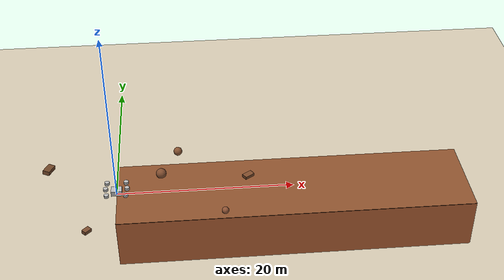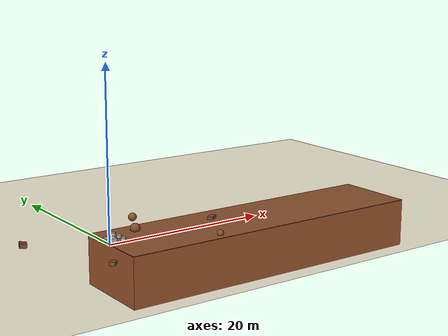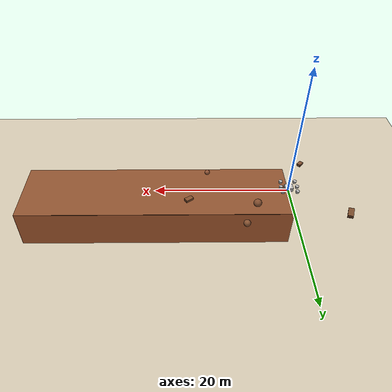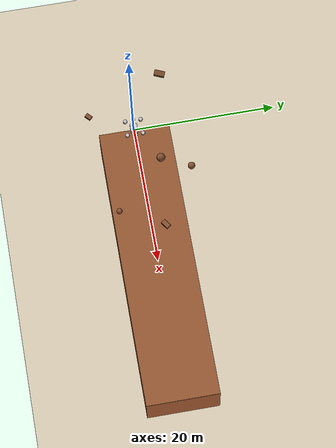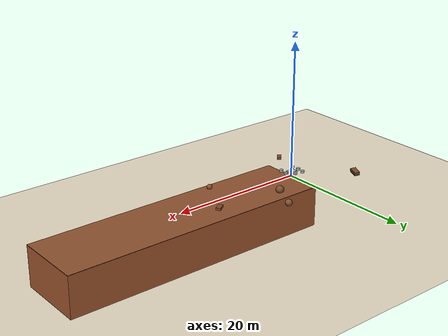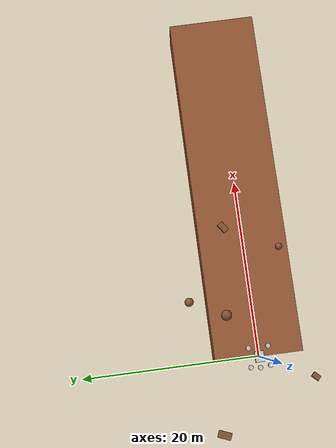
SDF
<?xml version="1.0" ?>
<sdf version="1.9">
  <world name="mars_surface">

    <!-- Mars gravity: 3.721 m/s^2 -->
    <gravity>0 0 -3.721</gravity>

    <!-- Mars atmosphere (thin CO2) -->
    <atmosphere type="adiabatic">
      <temperature>210</temperature>
      <pressure>636</pressure>
    </atmosphere>

    <!-- Physics engine -->
    <physics name="1ms" type="ode">
      <max_step_size>0.001</max_step_size>
      <real_time_factor>1.0</real_time_factor>
    </physics>

    <!-- Core simulation systems -->
    <plugin filename="gz-sim-physics-system"
            name="gz::sim::systems::Physics"/>
    <plugin filename="gz-sim-user-commands-system"
            name="gz::sim::systems::UserCommands"/>
    <plugin filename="gz-sim-scene-broadcaster-system"
            name="gz::sim::systems::SceneBroadcaster"/>
    <plugin filename="gz-sim-websocket-server-system"
            name="gz::sim::systems::WebsocketServer">
      <port>9002</port>
      <publication_hz>30</publication_hz>
      <max_connections>-1</max_connections>
    </plugin>
    <plugin filename="gz-sim-sensors-system"
            name="gz::sim::systems::Sensors">
      <render_engine>ogre2</render_engine>
    </plugin>
    <plugin filename="gz-sim-imu-system"
            name="gz::sim::systems::Imu"/>
    <plugin filename="gz-sim-contact-system"
            name="gz::sim::systems::Contact"/>

    <!-- Mars sky / scene -->
    <scene>
      <ambient>0.6 0.4 0.3 1.0</ambient>
      <background>0.76 0.55 0.38 1.0</background>
      <shadows>true</shadows>
    </scene>

    <!-- Sun (dimmer than Earth, Mars is farther) -->
    <light type="directional" name="mars_sun">
      <cast_shadows>true</cast_shadows>
      <pose>0 0 100 0 0 0</pose>
      <diffuse>0.9 0.7 0.5 1</diffuse>
      <specular>0.3 0.2 0.1 1</specular>
      <direction>-0.5 0.5 -1.0</direction>
    </light>

    <!-- Ground plane -->
    <model name="mars_ground">
      <static>true</static>
      <link name="ground_link">
        <collision name="ground_collision">
          <geometry>
            <plane>
              <normal>0 0 1</normal>
              <size>500 500</size>
            </plane>
          </geometry>
          <surface>
            <friction>
              <ode>
                <mu>0.8</mu>
                <mu2>0.8</mu2>
              </ode>
            </friction>
          </surface>
        </collision>
        <visual name="ground_visual">
          <geometry>
            <plane>
              <normal>0 0 1</normal>
              <size>500 500</size>
            </plane>
          </geometry>
          <material>
            <ambient>0.6 0.3 0.15 1</ambient>
            <diffuse>0.7 0.35 0.18 1</diffuse>
          </material>
        </visual>
      </link>
    </model>

    <!-- Rocks / obstacles -->
    <model name="rock_1">
      <static>true</static>
      <pose>5 3 0.3 0 0 0.5</pose>
      <link name="rock_link">
        <collision name="rock_col">
          <geometry><sphere><radius>0.6</radius></sphere></geometry>
        </collision>
        <visual name="rock_vis">
          <geometry><sphere><radius>0.6</radius></sphere></geometry>
          <material>
            <ambient>0.4 0.25 0.15 1</ambient>
            <diffuse>0.5 0.3 0.18 1</diffuse>
          </material>
        </visual>
      </link>
    </model>

    <model name="rock_2">
      <static>true</static>
      <pose>-8 5 0.15 0.1 0.1 1.2</pose>
      <link name="rock_link">
        <collision name="rock_col">
          <geometry><box><size>1.5 0.8 0.5</size></box></geometry>
        </collision>
        <visual name="rock_vis">
          <geometry><box><size>1.5 0.8 0.5</size></box></geometry>
          <material>
            <ambient>0.35 0.2 0.12 1</ambient>
            <diffuse>0.45 0.28 0.16 1</diffuse>
          </material>
        </visual>
      </link>
    </model>

    <model name="rock_3">
      <static>true</static>
      <pose>12 -4 0.25 0 0 0.3</pose>
      <link name="rock_link">
        <collision name="rock_col">
          <geometry><sphere><radius>0.4</radius></sphere></geometry>
        </collision>
        <visual name="rock_vis">
          <geometry><sphere><radius>0.4</radius></sphere></geometry>
          <material>
            <ambient>0.45 0.28 0.16 1</ambient>
            <diffuse>0.55 0.32 0.2 1</diffuse>
          </material>
        </visual>
      </link>
    </model>

    <model name="rock_4">
      <static>true</static>
      <pose>-3 -6 0.2 0.05 0.05 0.8</pose>
      <link name="rock_link">
        <collision name="rock_col">
          <geometry><box><size>0.9 0.6 0.4</size></box></geometry>
        </collision>
        <visual name="rock_vis">
          <geometry><box><size>0.9 0.6 0.4</size></box></geometry>
          <material>
            <ambient>0.38 0.22 0.14 1</ambient>
            <diffuse>0.48 0.3 0.18 1</diffuse>
          </material>
        </visual>
      </link>
    </model>

    <model name="rock_5">
      <static>true</static>
      <pose>7 7 0.35 0 0 1.0</pose>
      <link name="rock_link">
        <collision name="rock_col">
          <geometry><sphere><radius>0.5</radius></sphere></geometry>
        </collision>
        <visual name="rock_vis">
          <geometry><sphere><radius>0.5</radius></sphere></geometry>
          <material>
            <ambient>0.42 0.26 0.15 1</ambient>
            <diffuse>0.52 0.32 0.19 1</diffuse>
          </material>
        </visual>
      </link>
    </model>

    <model name="rock_6">
      <static>true</static>
      <pose>15 2 0.18 0 0 0.6</pose>
      <link name="rock_link">
        <collision name="rock_col">
          <geometry><box><size>1.2 0.7 0.35</size></box></geometry>
        </collision>
        <visual name="rock_vis">
          <geometry><box><size>1.2 0.7 0.35</size></box></geometry>
          <material>
            <ambient>0.4 0.24 0.14 1</ambient>
            <diffuse>0.5 0.3 0.17 1</diffuse>
          </material>
        </visual>
      </link>
    </model>

    <!-- Cliff / drop-off hazard at x=20 -->
    <model name="cliff_edge">
      <static>true</static>
      <pose>20 0 -3 0 0 0</pose>
      <link name="cliff_link">
        <collision name="cliff_col">
          <geometry><box><size>40 10 6</size></box></geometry>
        </collision>
        <visual name="cliff_vis">
          <geometry><box><size>40 10 6</size></box></geometry>
          <material>
            <ambient>0.5 0.28 0.15 1</ambient>
            <diffuse>0.55 0.32 0.18 1</diffuse>
          </material>
        </visual>
      </link>
    </model>

    <!-- Include the Perseverance rover -->
    <include>
      <uri>model://perseverance</uri>
      <name>perseverance</name>
      <pose>0 0 0.5 0 0 0</pose>
    </include>

  </world>
</sdf>

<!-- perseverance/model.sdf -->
<sdf version="1.9">
  <model name="perseverance">

    <!-- Base link: chassis, mass 1025 kg, IMU + all cameras/LIDAR/contact -->
    <link name="base_link">
      <pose>0 0 0 0 0 0</pose>
      <inertial>
        <pose>0 0 0.8 0 0 0</pose>
        <mass>1025</mass>
        <inertia>
          <ixx>10</ixx><ixy>0</ixy><ixz>0</ixz>
          <iyy>25</iyy><iyz>0</iyz>
          <izz>20</izz>
        </inertia>
      </inertial>
      <collision name="base_link_collision">
        <geometry>
          <box><size>1.2 1.0 0.6</size></box>
        </geometry>
        <surface>
          <friction>
            <ode><mu>0.5</mu><mu2>1.0</mu2></ode>
          </friction>
        </surface>
      </collision>
      <!-- Box visual so sim loads without mesh; add resources/perseverance.dae for real rover mesh -->
      <visual name="base_visual">
        <geometry>
          <box><size>1.2 1.0 0.6</size></box>
        </geometry>
      </visual>

      <!-- Existing IMU (50 Hz, Gaussian noise) -->
      <sensor name="imu_sensor" type="imu">
        <always_on>1</always_on>
        <update_rate>50</update_rate>
        <imu>
          <angular_velocity>
            <x><noise type="gaussian"><mean>0</mean><stddev>0.0002</stddev><bias_mean>7.5e-06</bias_mean><bias_stddev>8e-07</bias_stddev><dynamic_bias_stddev>4e-07</dynamic_bias_stddev><dynamic_bias_correlation_time>1000</dynamic_bias_correlation_time></noise></x>
            <y><noise type="gaussian"><mean>0</mean><stddev>0.0002</stddev><bias_mean>7.5e-06</bias_mean><bias_stddev>8e-07</bias_stddev><dynamic_bias_stddev>4e-07</dynamic_bias_stddev><dynamic_bias_correlation_time>1000</dynamic_bias_correlation_time></noise></y>
            <z><noise type="gaussian"><mean>0</mean><stddev>0.0002</stddev><bias_mean>7.5e-06</bias_mean><bias_stddev>8e-07</bias_stddev><dynamic_bias_stddev>4e-07</dynamic_bias_stddev><dynamic_bias_correlation_time>1000</dynamic_bias_correlation_time></noise></z>
          </angular_velocity>
          <linear_acceleration>
            <x><noise type="gaussian"><mean>0</mean><stddev>0.01</stddev><bias_mean>0.1</bias_mean><bias_stddev>0.001</bias_stddev><dynamic_bias_stddev>0.002</dynamic_bias_stddev><dynamic_bias_correlation_time>300</dynamic_bias_correlation_time></noise></x>
            <y><noise type="gaussian"><mean>0</mean><stddev>0.01</stddev><bias_mean>0.1</bias_mean><bias_stddev>0.001</bias_stddev><dynamic_bias_stddev>0.002</dynamic_bias_stddev><dynamic_bias_correlation_time>300</dynamic_bias_correlation_time></noise></y>
            <z><noise type="gaussian"><mean>0</mean><stddev>0.01</stddev><bias_mean>0.1</bias_mean><bias_stddev>0.001</bias_stddev><dynamic_bias_stddev>0.002</dynamic_bias_stddev><dynamic_bias_correlation_time>300</dynamic_bias_correlation_time></noise></z>
          </linear_acceleration>
        </imu>
        <topic>/rover/imu</topic>
      </sensor>

      <!-- === NAVCAM (Front Stereo Camera) === -->
      <sensor name="navcam_left" type="camera">
        <pose>0.5 0.15 1.5 0 0.2 0</pose>
        <always_on>1</always_on>
        <update_rate>15</update_rate>
        <camera name="navcam_left">
          <horizontal_fov>1.3962634</horizontal_fov>
          <image>
            <width>1280</width>
            <height>960</height>
            <format>R8G8B8</format>
          </image>
          <clip><near>0.1</near><far>500</far></clip>
          <noise>
            <type>gaussian</type>
            <mean>0.0</mean>
            <stddev>0.007</stddev>
          </noise>
        </camera>
        <topic>/rover/navcam_left</topic>
      </sensor>

      <!-- === HAZCAM FRONT (Obstacle Detection) === -->
      <sensor name="hazcam_front" type="depth_camera">
        <pose>0.8 0 0.4 0 0.5 0</pose>
        <always_on>1</always_on>
        <update_rate>10</update_rate>
        <camera name="hazcam_front">
          <horizontal_fov>2.0944</horizontal_fov>
          <image>
            <width>640</width>
            <height>480</height>
            <format>R_FLOAT32</format>
          </image>
          <clip><near>0.05</near><far>20</far></clip>
        </camera>
        <topic>/rover/hazcam_front</topic>
      </sensor>

      <!-- === HAZCAM REAR === -->
      <sensor name="hazcam_rear" type="depth_camera">
        <pose>-0.8 0 0.4 0 0.5 3.14159</pose>
        <always_on>1</always_on>
        <update_rate>10</update_rate>
        <camera name="hazcam_rear">
          <horizontal_fov>2.0944</horizontal_fov>
          <image>
            <width>640</width>
            <height>480</height>
            <format>R_FLOAT32</format>
          </image>
          <clip><near>0.05</near><far>20</far></clip>
        </camera>
        <topic>/rover/hazcam_rear</topic>
      </sensor>

      <!-- === MASTCAM (High-res Science Camera on Mast) === -->
      <sensor name="mastcam" type="camera">
        <pose>0.3 0 2.0 0 0 0</pose>
        <always_on>1</always_on>
        <update_rate>5</update_rate>
        <camera name="mastcam">
          <horizontal_fov>0.2967</horizontal_fov>
          <image>
            <width>1600</width>
            <height>1200</height>
            <format>R8G8B8</format>
          </image>
          <clip><near>1.0</near><far>2000</far></clip>
        </camera>
        <topic>/rover/mastcam</topic>
      </sensor>

      <!-- === SUPERCAM LIDAR === -->
      <sensor name="supercam_lidar" type="gpu_lidar">
        <pose>0.3 0 2.1 0 0 0</pose>
        <always_on>1</always_on>
        <update_rate>10</update_rate>
        <lidar>
          <scan>
            <horizontal>
              <samples>360</samples>
              <resolution>1</resolution>
              <min_angle>-3.14159</min_angle>
              <max_angle>3.14159</max_angle>
            </horizontal>
            <vertical>
              <samples>16</samples>
              <resolution>1</resolution>
              <min_angle>-0.26</min_angle>
              <max_angle>0.26</max_angle>
            </vertical>
          </scan>
          <range>
            <min>0.1</min>
            <max>100</max>
            <resolution>0.01</resolution>
          </range>
          <noise>
            <type>gaussian</type>
            <mean>0</mean>
            <stddev>0.02</stddev>
          </noise>
        </lidar>
        <topic>/rover/lidar</topic>
        <visualize>true</visualize>
      </sensor>

      <!-- === CONTACT SENSOR (Wheel Ground Contact) === -->
      <sensor name="wheel_contact" type="contact">
        <always_on>1</always_on>
        <update_rate>30</update_rate>
        <contact>
          <collision>base_link_collision</collision>
        </contact>
        <topic>/rover/contact</topic>
      </sensor>
    </link>

    <!-- Left wheels (y forward, x right, z up; left side at x=1.07) -->
    <link name="left_wheel1">
      <pose>1.07 1.14 0.26 0 0 0</pose>
      <inertial><mass>10</mass><inertia><ixx>0.1</ixx><ixy>0</ixy><ixz>0</ixz><iyy>0.1</iyy><iyz>0</iyz><izz>0.1</izz></inertia></inertial>
      <collision name="left_wheel1_collision">
        <pose>0 0 0 0 1.5707963267948966 0</pose>
        <geometry><cylinder><radius>0.27</radius><length>0.33</length></cylinder></geometry>
        <surface>
          <friction>
            <ode>
              <mu>0.5</mu><mu2>1.0</mu2>
              <slip1>0.00092</slip1><slip2>0</slip2>
              <fdir1>0 0 1</fdir1>
            </ode>
          </friction>
          <contact>
            <ode><kp>1e7</kp><kd>1</kd></ode>
          </contact>
        </surface>
      </collision>
      <visual name="left_wheel1_visual">
        <geometry><cylinder><radius>0.27</radius><length>0.33</length></cylinder></geometry>
      </visual>
    </link>
    <link name="left_wheel2">
      <pose>1.2 0.08 0.26 0 0 0</pose>
      <inertial><mass>10</mass><inertia><ixx>0.1</ixx><ixy>0</ixy><ixz>0</ixz><iyy>0.1</iyy><iyz>0</iyz><izz>0.1</izz></inertia></inertial>
      <collision name="left_wheel2_collision">
        <pose>0 0 0 0 1.5707963267948966 0</pose>
        <geometry><cylinder><radius>0.27</radius><length>0.33</length></cylinder></geometry>
        <surface>
          <friction>
            <ode>
              <mu>0.5</mu><mu2>1.0</mu2>
              <slip1>0.00092</slip1><slip2>0</slip2>
              <fdir1>0 0 1</fdir1>
            </ode>
          </friction>
          <contact>
            <ode><kp>1e7</kp><kd>1</kd></ode>
          </contact>
        </surface>
      </collision>
      <visual name="left_wheel2_visual">
        <geometry><cylinder><radius>0.27</radius><length>0.33</length></cylinder></geometry>
      </visual>
    </link>
    <link name="left_wheel3">
      <pose>1.07 -1.07 0.26 0 0 0</pose>
      <inertial><mass>10</mass><inertia><ixx>0.1</ixx><ixy>0</ixy><ixz>0</ixz><iyy>0.1</iyy><iyz>0</iyz><izz>0.1</izz></inertia></inertial>
      <collision name="left_wheel3_collision">
        <pose>0 0 0 0 1.5707963267948966 0</pose>
        <geometry><cylinder><radius>0.27</radius><length>0.33</length></cylinder></geometry>
        <surface>
          <friction>
            <ode>
              <mu>0.5</mu><mu2>1.0</mu2>
              <slip1>0.00092</slip1><slip2>0</slip2>
              <fdir1>0 0 1</fdir1>
            </ode>
          </friction>
          <contact>
            <ode><kp>1e7</kp><kd>1</kd></ode>
          </contact>
        </surface>
      </collision>
      <visual name="left_wheel3_visual">
        <geometry><cylinder><radius>0.27</radius><length>0.33</length></cylinder></geometry>
      </visual>
    </link>

    <!-- Right wheels (at x=-1.07) -->
    <link name="right_wheel1">
      <pose>-1.07 1.14 0.26 0 0 0</pose>
      <inertial><mass>10</mass><inertia><ixx>0.1</ixx><ixy>0</ixy><ixz>0</ixz><iyy>0.1</iyy><iyz>0</iyz><izz>0.1</izz></inertia></inertial>
      <collision name="right_wheel1_collision">
        <pose>0 0 0 0 1.5707963267948966 0</pose>
        <geometry><cylinder><radius>0.27</radius><length>0.33</length></cylinder></geometry>
        <surface>
          <friction>
            <ode>
              <mu>0.5</mu><mu2>1.0</mu2>
              <slip1>0.00092</slip1><slip2>0</slip2>
              <fdir1>0 0 1</fdir1>
            </ode>
          </friction>
          <contact>
            <ode><kp>1e7</kp><kd>1</kd></ode>
          </contact>
        </surface>
      </collision>
      <visual name="right_wheel1_visual">
        <geometry><cylinder><radius>0.27</radius><length>0.33</length></cylinder></geometry>
      </visual>
    </link>
    <link name="right_wheel2">
      <pose>-1.2 0.08 0.26 0 0 0</pose>
      <inertial><mass>10</mass><inertia><ixx>0.1</ixx><ixy>0</ixy><ixz>0</ixz><iyy>0.1</iyy><iyz>0</iyz><izz>0.1</izz></inertia></inertial>
      <collision name="right_wheel2_collision">
        <pose>0 0 0 0 1.5707963267948966 0</pose>
        <geometry><cylinder><radius>0.27</radius><length>0.33</length></cylinder></geometry>
        <surface>
          <friction>
            <ode>
              <mu>0.5</mu><mu2>1.0</mu2>
              <slip1>0.00092</slip1><slip2>0</slip2>
              <fdir1>0 0 1</fdir1>
            </ode>
          </friction>
          <contact>
            <ode><kp>1e7</kp><kd>1</kd></ode>
          </contact>
        </surface>
      </collision>
      <visual name="right_wheel2_visual">
        <geometry><cylinder><radius>0.27</radius><length>0.33</length></cylinder></geometry>
      </visual>
    </link>
    <link name="right_wheel3">
      <pose>-1.07 -1.07 0.26 0 0 0</pose>
      <inertial><mass>10</mass><inertia><ixx>0.1</ixx><ixy>0</ixy><ixz>0</ixz><iyy>0.1</iyy><iyz>0</iyz><izz>0.1</izz></inertia></inertial>
      <collision name="right_wheel3_collision">
        <pose>0 0 0 0 1.5707963267948966 0</pose>
        <geometry><cylinder><radius>0.27</radius><length>0.33</length></cylinder></geometry>
        <surface>
          <friction>
            <ode>
              <mu>0.5</mu><mu2>1.0</mu2>
              <slip1>0.00092</slip1><slip2>0</slip2>
              <fdir1>0 0 1</fdir1>
            </ode>
          </friction>
          <contact>
            <ode><kp>1e7</kp><kd>1</kd></ode>
          </contact>
        </surface>
      </collision>
      <visual name="right_wheel3_visual">
        <geometry><cylinder><radius>0.27</radius><length>0.33</length></cylinder></geometry>
      </visual>
    </link>

    <!-- Revolute joints: parent base_link, child wheel, axis Y for rolling -->
    <joint name="left_wheel1_j" type="revolute">
      <parent>base_link</parent>
      <child>left_wheel1</child>
      <axis><xyz expressed_in="__model__">0 1 0</xyz></axis>
      <limit><lower>-1e16</lower><upper>1e16</upper></limit>
    </joint>
    <joint name="left_wheel2_j" type="revolute">
      <parent>base_link</parent>
      <child>left_wheel2</child>
      <axis><xyz expressed_in="__model__">0 1 0</xyz></axis>
      <limit><lower>-1e16</lower><upper>1e16</upper></limit>
    </joint>
    <joint name="left_wheel3_j" type="revolute">
      <parent>base_link</parent>
      <child>left_wheel3</child>
      <axis><xyz expressed_in="__model__">0 1 0</xyz></axis>
      <limit><lower>-1e16</lower><upper>1e16</upper></limit>
    </joint>
    <joint name="right_wheel1_j" type="revolute">
      <parent>base_link</parent>
      <child>right_wheel1</child>
      <axis><xyz expressed_in="__model__">0 1 0</xyz></axis>
      <limit><lower>-1e16</lower><upper>1e16</upper></limit>
    </joint>
    <joint name="right_wheel2_j" type="revolute">
      <parent>base_link</parent>
      <child>right_wheel2</child>
      <axis><xyz expressed_in="__model__">0 1 0</xyz></axis>
      <limit><lower>-1e16</lower><upper>1e16</upper></limit>
    </joint>
    <joint name="right_wheel3_j" type="revolute">
      <parent>base_link</parent>
      <child>right_wheel3</child>
      <axis><xyz expressed_in="__model__">0 1 0</xyz></axis>
      <limit><lower>-1e16</lower><upper>1e16</upper></limit>
    </joint>

    <!-- === DIFFERENTIAL DRIVE PLUGIN === -->
    <plugin filename="gz-sim-diff-drive-system" name="gz::sim::systems::DiffDrive">
      <left_joint>left_wheel1_j</left_joint>
      <left_joint>left_wheel2_j</left_joint>
      <left_joint>left_wheel3_j</left_joint>
      <right_joint>right_wheel1_j</right_joint>
      <right_joint>right_wheel2_j</right_joint>
      <right_joint>right_wheel3_j</right_joint>
      <wheel_separation>2.14</wheel_separation>
      <wheel_radius>0.27</wheel_radius>
      <max_linear_acceleration>0.5</max_linear_acceleration>
      <min_linear_acceleration>-0.5</min_linear_acceleration>
      <max_angular_acceleration>0.3</max_angular_acceleration>
      <min_angular_acceleration>-0.3</min_angular_acceleration>
      <topic>/rover/cmd_vel</topic>
      <odom_topic>/rover/odometry</odom_topic>
      <tf_topic>/rover/tf</tf_topic>
      <frame_id>odom</frame_id>
      <child_frame_id>base_link</child_frame_id>
      <odom_publish_frequency>20</odom_publish_frequency>
    </plugin>

    <!-- === JOINT STATE PUBLISHER === -->
    <plugin filename="gz-sim-joint-state-publisher-system" name="gz::sim::systems::JointStatePublisher">
      <topic>/rover/joint_states</topic>
    </plugin>

  </model>
</sdf>
